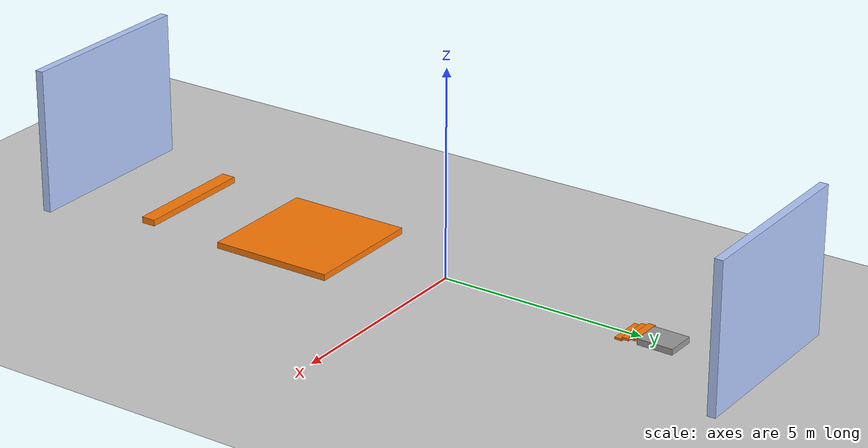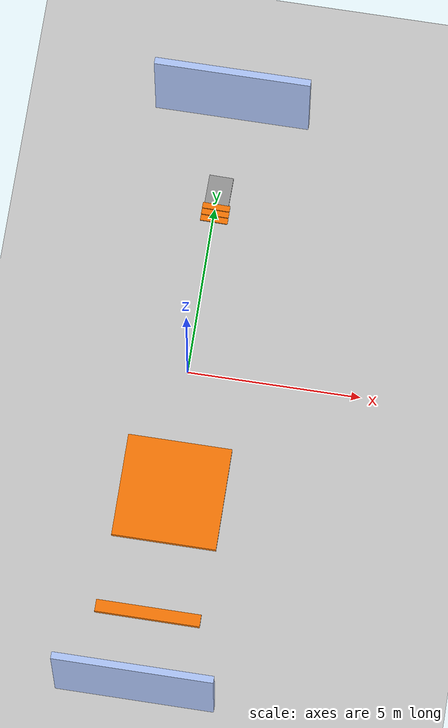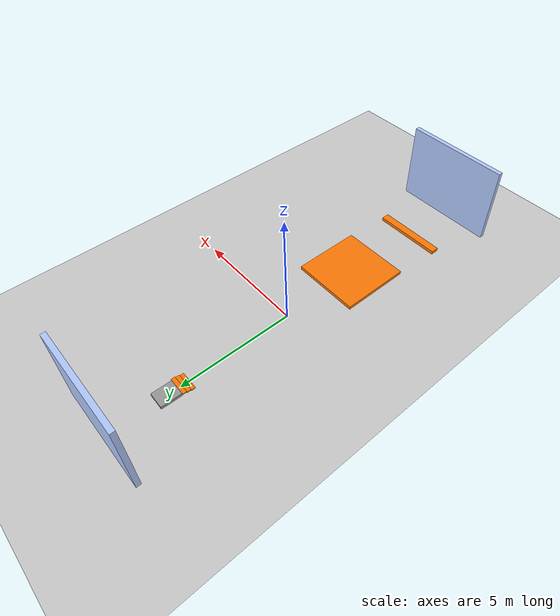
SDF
<sdf version="1.6">
 <world name="default">
  <light name="sun" type="directional">
   <pose>0 0 10 0 -0 0</pose>
   <diffuse>0.8 0.8 0.8 1</diffuse>
   <specular>0.1 0.1 0.1 1</specular>
   <attenuation>
    <range>1000</range>
    <constant>0.9</constant>
    <linear>0.01</linear>
    <quadratic>0.001</quadratic>
   </attenuation>
   <direction>-0.5 0.5 -1</direction>
  </light>
  <model name="ground_plane">
   <static>1</static>
   <link name="link">
    <collision name="collision">
     <geometry><plane><normal>0 0 1</normal><size>100 100</size></plane></geometry>
     <surface><friction><ode><mu>100</mu><mu2>50</mu2></ode></friction></surface>
    </collision>
    <visual name="visual">
     <cast_shadows>0</cast_shadows>
     <geometry><plane><normal>0 0 1</normal><size>100 100</size></plane></geometry>
     <material>
      <script><uri>file://media/materials/scripts/gazebo.material</uri><name>Gazebo/Grey</name></script>
     </material>
    </visual>
   </link>
  </model>
  <gravity>0 0 -9.8</gravity>
  <magnetic_field>6e-06 2.3e-05 -4.2e-05</magnetic_field>
  <atmosphere type="adiabatic"/>
  <physics name="default_physics" default="0" type="ode">
   <max_step_size>0.001</max_step_size>
   <real_time_factor>1</real_time_factor>
   <real_time_update_rate>1000</real_time_update_rate>
  </physics>
  <scene><ambient>0.4 0.4 0.4 1</ambient><background>0.7 0.7 0.7 1</background><shadows>1</shadows></scene>
  <spherical_coordinates>
   <surface_model>EARTH_WGS84</surface_model>
   <latitude_deg>0</latitude_deg>
   <longitude_deg>0</longitude_deg>
   <elevation>0</elevation>
   <heading_deg>0</heading_deg>
  </spherical_coordinates>
  <model name="OneStepV1">
   <pose>0.008843 -7.2379 0 0 -0 0</pose>
   <link name="Stairs_2">
    <visual name="Stairs_2_Visual_0">
     <pose>0 0 0.075 0 -0 0</pose>
     <geometry><box><size>3 0.35 0.15</size></box></geometry>
     <material>
      <script><uri>file://media/materials/scripts/gazebo.material</uri><name>Gazebo/Grey</name></script>
      <ambient>0.996078 0.47451 0.0196078 1</ambient>
     </material>
    </visual>
    <collision name="Stairs_2_Collision_0">
     <geometry><box><size>3 0.35 0.15</size></box></geometry>
     <pose>0 0 0.075 0 -0 0</pose>
    </collision>
   </link>
   <static>1</static>
  </model>
  <model name="OneStepV2Long">
   <pose>0.118531 -3.63136 0 0 -0 0</pose>
   <link name="Stairs_2">
    <visual name="Stairs_2_Visual_0">
     <pose>0 -0 0.075 0 -0 0</pose>
     <geometry><box><size>3 3 0.15</size></box></geometry>
     <material>
      <script><uri>file://media/materials/scripts/gazebo.material</uri><name>Gazebo/Grey</name></script>
      <ambient>0.996078 0.47451 0.0196078 1</ambient>
     </material>
    </visual>
    <collision name="Stairs_2_Collision_0">
     <geometry><box><size>3 3 0.15</size></box></geometry>
     <pose>0 -0 0.075 0 -0 0</pose>
    </collision>
   </link>
   <static>1</static>
  </model>
  <model name="WallV1">
   <pose>0.026217 -9.64997 0 0 -0 0</pose>
   <link name="Stairs_4">
    <visual name="Stairs_4_Visual_0">
     <pose>-0 0 1.75 0 -0 0</pose>
     <geometry><box><size>4.5 0.2 3.5</size></box></geometry>
     <material>
      <script><uri>file://media/materials/scripts/gazebo.material</uri><name>Gazebo/Grey</name></script>
      <ambient>0.701961 0.796078 1 1</ambient>
     </material>
    </visual>
    <collision name="Stairs_4_Collision_0">
     <geometry><box><size>4.5 0.2 3.5</size></box></geometry>
     <pose>-0 0 1.75 0 -0 0</pose>
    </collision>
   </link>
   <static>1</static>
  </model>
  <model name="StirsV2_0">
   <pose>0.027204 5.29352 0 0 -0 3.12575</pose>
   <link name="Stairs_2">
    <visual name="Stairs_2_Visual_0">
     <pose>-0.005505 0.603778 0.025 0 -0 0</pose>
     <geometry><box><size>0.8 0.173205 0.05</size></box></geometry>
     <material>
      <script><uri>file://media/materials/scripts/gazebo.material</uri><name>Gazebo/Grey</name></script>
      <ambient>0.996078 0.47451 0.0196078 1</ambient>
     </material>
    </visual>
    <collision name="Stairs_2_Collision_0">
     <geometry><box><size>0.8 0.173205 0.05</size></box></geometry>
     <pose>-0.005505 0.603778 0.025 0 -0 0</pose>
    </collision>
    <visual name="Stairs_2_Visual_1">
     <pose>-0.005505 0.430573 0.075 0 -0 0</pose>
     <geometry><box><size>0.8 0.173205 0.05</size></box></geometry>
     <material>
      <script><uri>file://media/materials/scripts/gazebo.material</uri><name>Gazebo/Grey</name></script>
      <ambient>0.996078 0.47451 0.0196078 1</ambient>
     </material>
    </visual>
    <collision name="Stairs_2_Collision_1">
     <geometry><box><size>0.8 0.173205 0.05</size></box></geometry>
     <pose>-0.005505 0.430573 0.075 0 -0 0</pose>
    </collision>
    <visual name="Stairs_2_Visual_2">
     <pose>-0.005505 0.257369 0.125 0 -0 0</pose>
     <geometry><box><size>0.8 0.173205 0.05</size></box></geometry>
     <material>
      <script><uri>file://media/materials/scripts/gazebo.material</uri><name>Gazebo/Grey</name></script>
      <ambient>0.996078 0.47451 0.0196078 1</ambient>
     </material>
    </visual>
    <collision name="Stairs_2_Collision_2">
     <geometry><box><size>0.506538 0.173205 0.05</size></box></geometry>
     <pose>-0.005505 0.257369 0.125 0 -0 0</pose>
    </collision>
   </link>
   <link name="Stairs_4">
    <visual name="Stairs_4_Visual_0">
     <pose>0 -0.260112 0.0715 0 -0 0</pose>
     <geometry><box><size>0.706 0.860536 0.143</size></box></geometry>
     <material>
      <script><uri>file://media/materials/scripts/gazebo.material</uri><name>Gazebo/Grey</name></script>
      <ambient>1 1 1 1</ambient>
     </material>
    </visual>
    <collision name="Stairs_4_Collision_0">
     <geometry><box><size>0.706 0.860536 0.143</size></box></geometry>
     <pose>0 -0.260112 0.0715 0 -0 0</pose>
    </collision>
   </link>
   <static>1</static>
  </model>
  <model name="WallV1_0">
   <pose>0.048811 7.96583 0 0 -0 0</pose>
   <link name="Stairs_4">
    <visual name="Stairs_4_Visual_0">
     <pose>-0 0 1.75 0 -0 0</pose>
     <geometry><box><size>4.5 0.2 3.5</size></box></geometry>
     <material>
      <script><uri>file://media/materials/scripts/gazebo.material</uri><name>Gazebo/Grey</name></script>
      <ambient>0.701961 0.796078 1 1</ambient>
     </material>
    </visual>
    <collision name="Stairs_4_Collision_0">
     <geometry><box><size>4.5 0.2 3.5</size></box></geometry>
     <pose>-0 0 1.75 0 -0 0</pose>
    </collision>
   </link>
   <static>1</static>
  </model>
 </world>
</sdf>
